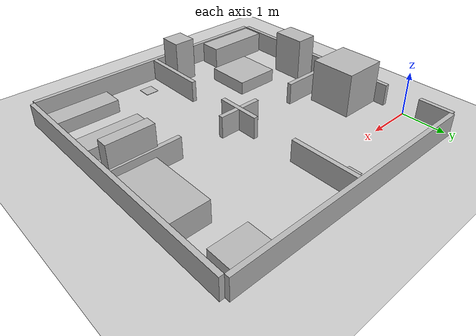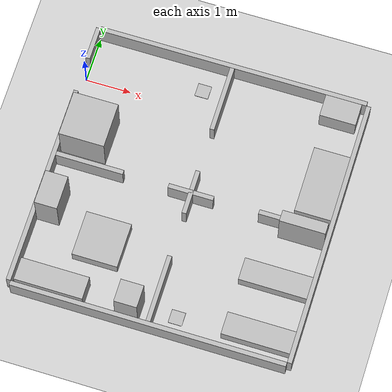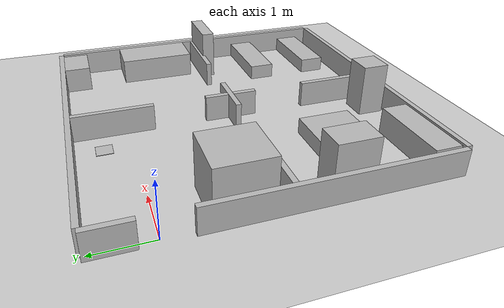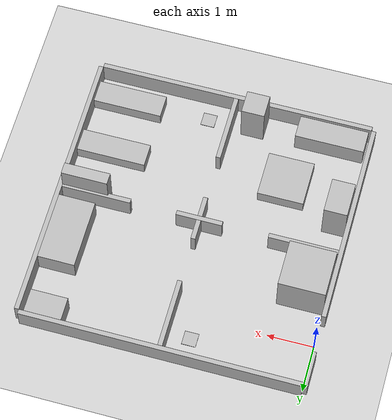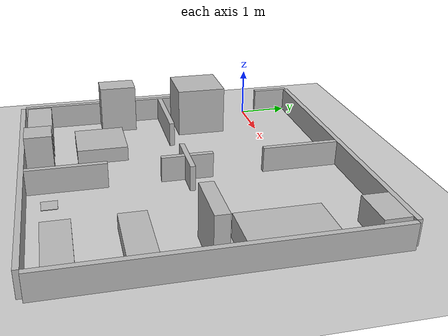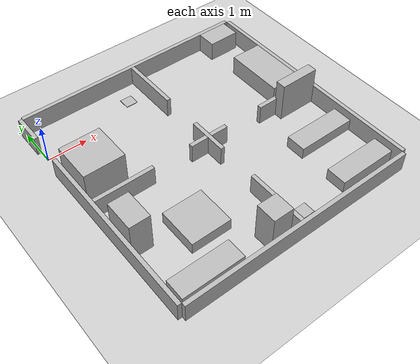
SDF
<sdf version="1.7">
 <world name="sample">
  <physics type="ode">
   <max_step_size>0.01</max_step_size>
   <real_time_factor>1</real_time_factor>
   <real_time_update_rate>100</real_time_update_rate>
   <gravity>0 0 -9.8</gravity>
  </physics>
  <include><uri>https://fuel.gazebosim.org/1.0/OpenRobotics/models/Sun</uri></include>
  <include><uri>https://fuel.gazebosim.org/1.0/OpenRobotics/models/Ground Plane</uri></include>
  <scene><shadows>false</shadows></scene>
  <model name="world_offset">
   <pose>0 1 0 0 0 0</pose>
   <model name="house_walls">
    <static>true</static>
    <link name="walls">
     <visual name="south_vis">
      <pose>3 -6.05 0.25 0 0 0</pose>
      <geometry><box><size>6 0.1 0.5</size></box></geometry>
     </visual>
     <collision name="south_col">
      <pose>3 -6.05 0.25 0 0 0</pose>
      <geometry><box><size>6 0.1 0.5</size></box></geometry>
     </collision>
     <visual name="north_vis">
      <pose>3 0.05 0.25 0 0 0</pose>
      <geometry><box><size>6 0.1 0.5</size></box></geometry>
     </visual>
     <collision name="north_col">
      <pose>3 0.05 0.25 0 0 0</pose>
      <geometry><box><size>6 0.1 0.5</size></box></geometry>
     </collision>
     <visual name="west_vis">
      <pose>-0.05 -0.325 0.25 0 0 0</pose>
      <geometry><box><size>0.1 0.75 0.5</size></box></geometry>
     </visual>
     <collision name="west_col">
      <pose>-0.05 -0.325 0.25 0 0 0</pose>
      <geometry><box><size>0.1 0.75 0.5</size></box></geometry>
     </collision>
     <visual name="west_vis2">
      <pose>-0.05 -3.75 0.25 0 0 0</pose>
      <geometry><box><size>0.1 4.5 0.5</size></box></geometry>
     </visual>
     <collision name="west_col2">
      <pose>-0.05 -3.75 0.25 0 0 0</pose>
      <geometry><box><size>0.1 4.5 0.5</size></box></geometry>
     </collision>
     <visual name="east_vis">
      <pose>6.05 -3 0.25 0 0 0</pose>
      <geometry><box><size>0.1 6 0.5</size></box></geometry>
     </visual>
     <collision name="east_col">
      <pose>6.05 -3 0.25 0 0 0</pose>
      <geometry><box><size>0.1 6 0.5</size></box></geometry>
     </collision>
     <visual name="center_v_low_vis">
      <pose>3 -5.25 0.25 0 0 0</pose>
      <geometry><box><size>0.1 1.5 0.5</size></box></geometry>
     </visual>
     <collision name="center_v_low_col">
      <pose>3 -5.25 0.25 0 0 0</pose>
      <geometry><box><size>0.1 1.5 0.5</size></box></geometry>
     </collision>
     <visual name="center_v_mid_vis">
      <pose>3 -3 0.25 0 0 0</pose>
      <geometry><box><size>0.1 1.0 0.5</size></box></geometry>
     </visual>
     <collision name="center_v_mid_col">
      <pose>3 -3 0.25 0 0 0</pose>
      <geometry><box><size>0.1 1.0 0.5</size></box></geometry>
     </collision>
     <visual name="center_v_high_vis">
      <pose>3 -0.75 0.25 0 0 0</pose>
      <geometry><box><size>0.1 1.5 0.5</size></box></geometry>
     </visual>
     <collision name="center_v_high_col">
      <pose>3 -0.75 0.25 0 0 0</pose>
      <geometry><box><size>0.1 1.5 0.5</size></box></geometry>
     </collision>
     <visual name="center_h_left_vis">
      <pose>0.75 -3 0.25 0 0 0</pose>
      <geometry><box><size>1.5 0.1 0.5</size></box></geometry>
     </visual>
     <collision name="center_h_left_col">
      <pose>0.75 -3 0.25 0 0 0</pose>
      <geometry><box><size>1.5 0.1 0.5</size></box></geometry>
     </collision>
     <visual name="center_h_mid_vis">
      <pose>3 -3 0.25 0 0 0</pose>
      <geometry><box><size>1.0 0.1 0.5</size></box></geometry>
     </visual>
     <collision name="center_h_mid_col">
      <pose>3 -3 0.25 0 0 0</pose>
      <geometry><box><size>1.0 0.1 0.5</size></box></geometry>
     </collision>
     <visual name="center_h_right_vis">
      <pose>5.25 -3 0.25 0 0 0</pose>
      <geometry><box><size>1.5 0.1 0.5</size></box></geometry>
     </visual>
     <collision name="center_h_right_col">
      <pose>5.25 -3 0.25 0 0 0</pose>
      <geometry><box><size>1.5 0.1 0.5</size></box></geometry>
     </collision>
    </link>
   </model>
   <model name="bed_rooms">
    <static>true</static>
    <link name="bed">
     <visual name="bed_vis">
      <pose>5.6 -2 0.25 0 0 0</pose>
      <geometry><box><size>0.8 1.5 0.5</size></box></geometry>
     </visual>
     <collision name="bed_col">
      <pose>5.6 -2 0.25 0 0 0</pose>
      <geometry><box><size>0.8 1.5 0.5</size></box></geometry>
     </collision>
    </link>
    <link name="desk">
     <visual name="desk_vis">
      <pose>5.5 -0.25 0.25 0 0 0</pose>
      <geometry><box><size>0.8 0.5 0.5</size></box></geometry>
     </visual>
     <collision name="desk_col">
      <pose>5.5 -0.25 0.25 0 0 0</pose>
      <geometry><box><size>0.8 0.5 0.5</size></box></geometry>
     </collision>
    </link>
   </model>
   <model name="living_rooms">
    <static>true</static>
    <link name="tv">
     <visual name="tv_vis">
      <pose>5.5 -3.13 0.5 0 0 0</pose>
      <geometry><box><size>1.0 0.25 1.0</size></box></geometry>
     </visual>
     <collision name="tv_col">
      <pose>5.5 -3.13 0.5 0 0 0</pose>
      <geometry><box><size>1.0 0.25 1.0</size></box></geometry>
     </collision>
    </link>
    <link name="sofa">
     <visual name="sofa_vis">
      <pose>5.25 -5.5 0.15 0 0 0</pose>
      <geometry><box><size>1.5 0.5 0.3</size></box></geometry>
     </visual>
     <collision name="sofa_col">
      <pose>5.25 -5.5 0.15 0 0 0</pose>
      <geometry><box><size>1.5 0.5 0.3</size></box></geometry>
     </collision>
    </link>
    <link name="dining_table">
     <visual name="dining_table_vis">
      <pose>5.25 -4.25 0.15 0 0 0</pose>
      <geometry><box><size>1.5 0.5 0.3</size></box></geometry>
     </visual>
     <collision name="dining_table_col">
      <pose>5.25 -4.25 0.15 0 0 0</pose>
      <geometry><box><size>1.5 0.5 0.3</size></box></geometry>
     </collision>
    </link>
    <link name="dock">
     <visual name="dock_vis">
      <pose>3.5 -5.6 0.005 0 0 0</pose>
      <geometry><box><size>0.3 0.3 0.01</size></box></geometry>
     </visual>
     <collision name="dock_col">
      <pose>3.5 -5.6 0.05 0 0 0</pose>
      <geometry><box><size>0.3 0.3 0.01</size></box></geometry>
     </collision>
    </link>
   </model>
   <model name="kitchen">
    <static>true</static>
    <link name="sink">
     <visual name="sink_vis">
      <pose>0.8 -5.7 0.25 0 0 0</pose>
      <geometry><box><size>1.5 0.5 0.5</size></box></geometry>
     </visual>
     <collision name="sink_col">
      <pose>0.6 -5.7 0.5 0 0 0</pose>
      <geometry><box><size>1.5 0.5 0.5</size></box></geometry>
     </collision>
    </link>
    <link name="refridge">
     <visual name="refridge_vis">
      <pose>2.5 -5.7 0.5 0 0 0</pose>
      <geometry><box><size>0.5 0.5 1.0</size></box></geometry>
     </visual>
     <collision name="refridge_col">
      <pose>2.5 -5.7 0.5 0 0 0</pose>
      <geometry><box><size>0.5 0.5 1.0</size></box></geometry>
     </collision>
    </link>
    <link name="kitchen_table">
     <visual name="kitchen_table_vis">
      <pose>1.5 -4.5 0.15 0 0 0</pose>
      <geometry><box><size>1 1 0.3</size></box></geometry>
     </visual>
     <collision name="kitchen_table_col">
      <pose>1.5 -4.5 0.15 0 0 0</pose>
      <geometry><box><size>1 1 0.3</size></box></geometry>
     </collision>
    </link>
    <link name="shelf">
     <visual name="shelf_vis">
      <pose>0.25 -4 0.5 0 0 0</pose>
      <geometry><box><size>0.5 0.75 1</size></box></geometry>
     </visual>
     <collision name="shelf_col">
      <pose>0.25 -4 0.5 0 0 0</pose>
      <geometry><box><size>0.5 0.75 1</size></box></geometry>
     </collision>
    </link>
   </model>
   <model name="guest_rooms">
    <static>true</static>
    <link name="dock">
     <visual name="dock_vis">
      <pose>2.5 -0.5 0.005 0 0 0</pose>
      <geometry><box><size>0.3 0.3 0.01</size></box></geometry>
     </visual>
     <collision name="dock_col">
      <pose>2.5 -0.5 0.05 0 0 0</pose>
      <geometry><box><size>0.3 0.3 0.01</size></box></geometry>
     </collision>
    </link>
    <link name="box">
     <visual name="box_vis">
      <pose>0.5 -2.25 0.5 0 0 0</pose>
      <geometry><box><size>1 1 1</size></box></geometry>
     </visual>
     <collision name="box_col">
      <pose>0.5 -2.25 0.5 0 0 0</pose>
      <geometry><box><size>1 1 1</size></box></geometry>
     </collision>
    </link>
   </model>
  </model>
  <material><ambient>0.9 0.9 0.9 1</ambient><diffuse>0.9 0.9 0.9 1</diffuse></material>
 </world>
</sdf>
